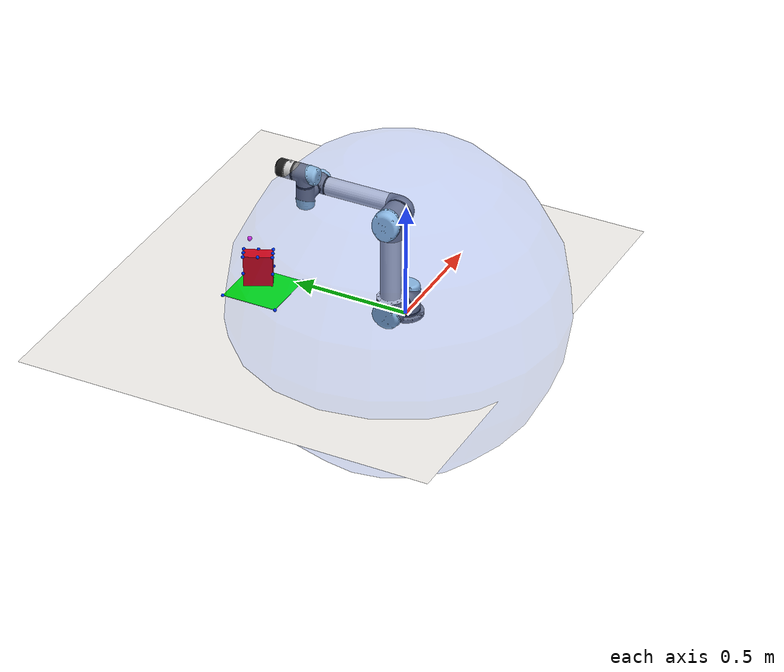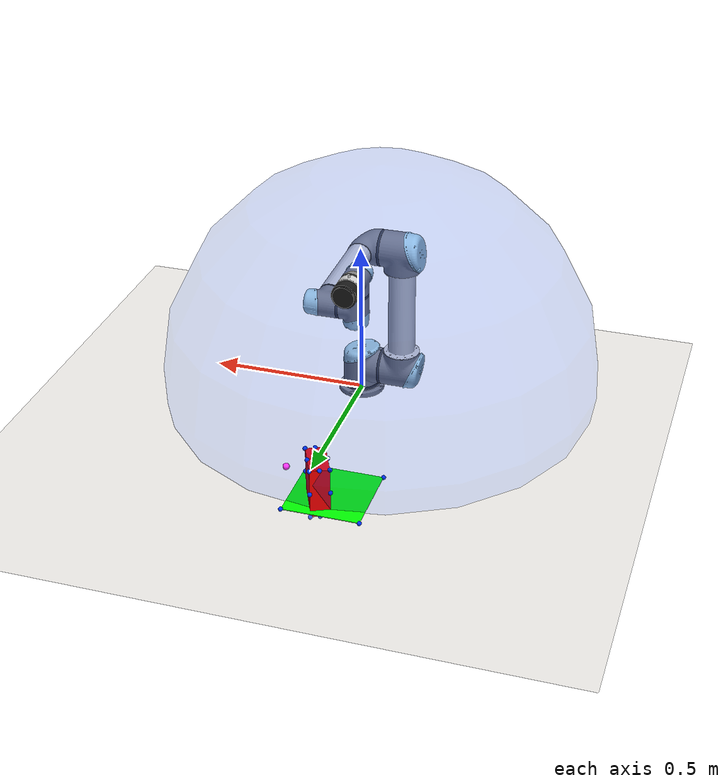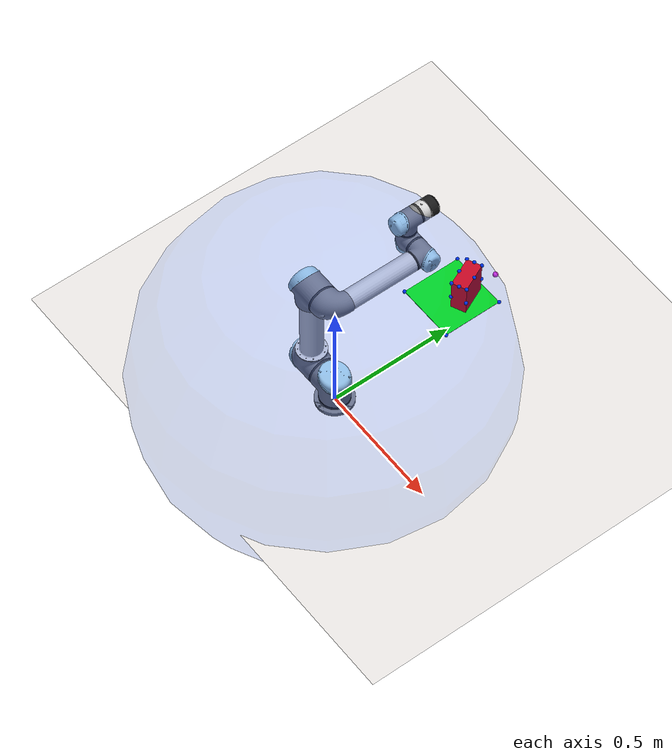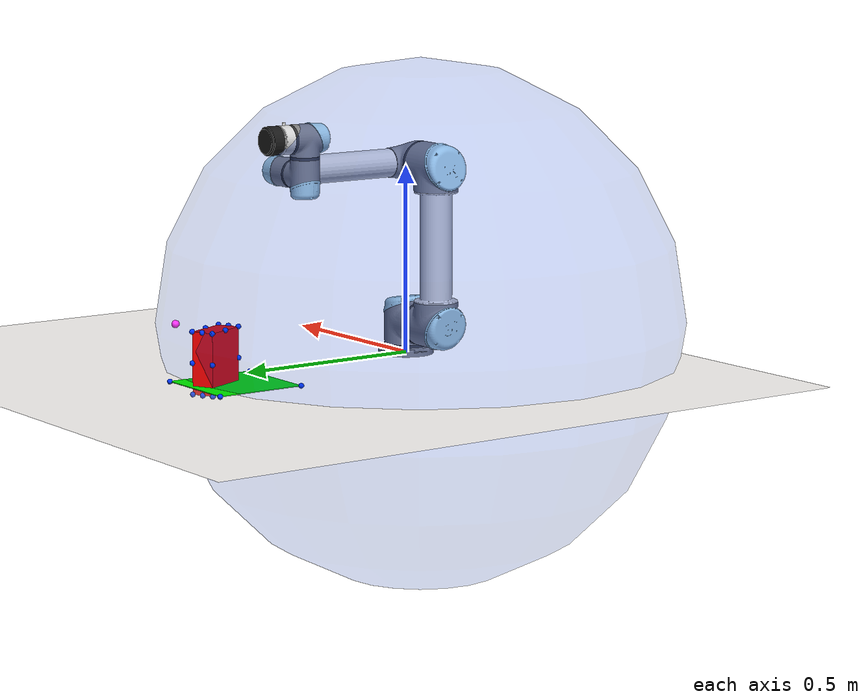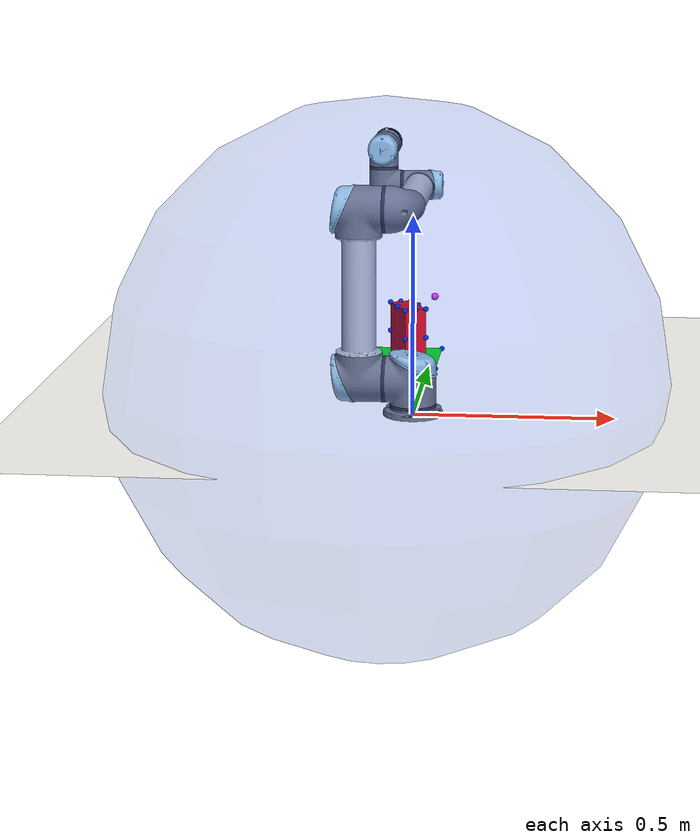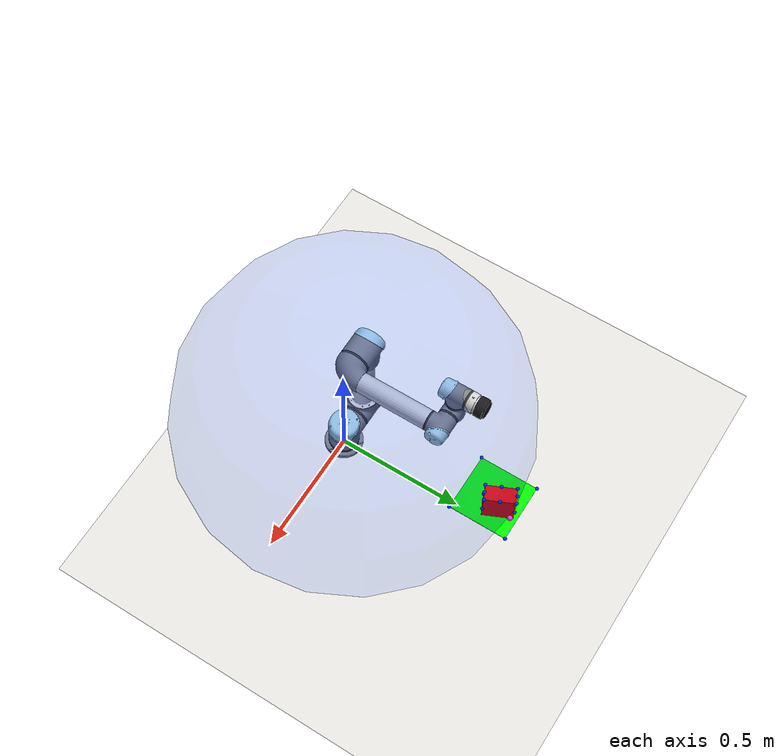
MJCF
<!-- NOTE: the joint limits and references have not been set. If using -->
<!-- this to control a real ur5, make sure they align with the values -->
<!-- used in the real arm firmware -->
<!-- Masses and center-of-masses taken from: www.universal-robots.com/
        how-tos-and-faqs/faq/ur-faq/
        parameters-for-calculations-of-kinematics-and-dynamics-45257/ -->
<!-- Principle moments of inertia not provided, set all to 0.1. -->
<!-- Inertia parameters provided at link below, not sure of accuracy so not used:
        http://hades.mech.northwestern.edu/images/4/49/UR5-URDF.pdf -->
<mujoco model="ur5">
    <compiler angle="radian" meshdir="meshes" balanceinertia="true" eulerseq="xyz"/>

    <default>
        <light castshadow="false" diffuse="1 1 1" />
        <camera fovy="60" />
    </default>

    <custom>
        <numeric name="START_ANGLES" data="0 -.67 -.67 0 0 0"/>
        <numeric name="N_GRIPPER_JOINTS" data="0" />
        <text name="google_id" data="1SjWRUl-D1FZ5fB2cy4jF4X9wTsQ5LWzo"/>
    </custom>

    <asset>
        <!-- arm models -->
        <mesh file="link0.stl"/>
        <mesh file="link1.stl"/>
        <mesh file="link1_cap.stl" />
        <mesh file="link1_connector.stl" />
        <mesh file="link2.stl" />
        <mesh file="link2_tube.stl" />
        <mesh file="link2_cap.stl" />
        <mesh file="link2_connector.stl" />
        <mesh file="link3a.stl" />
        <mesh file="link3a_connector.stl" />
        <mesh file="link3_tube.stl" />
        <mesh file="link3_cap.stl" />
        <mesh file="link3b.stl" />
        <mesh file="link3b_connector.stl" />
        <mesh file="link3b_connector2.stl"/>
        <mesh file="link4.stl" />
        <mesh file="link4_cap.stl" />
        <mesh file="link4_connector.stl" />
        <mesh file="link5.stl" />
        <mesh file="link5_cap.stl" />
        <mesh file="link5_connector.stl" />
        <mesh file="link6.stl" />
        <mesh file="link6_connector.stl" />

        <mesh file="FTS-300-S_support_20210305.stl" />
        <mesh file="robotiq_85_base_link.stl" />
        <mesh file="robotiq_85_finger_link.stl" />
        <mesh file="robotiq_85_finger_tip_link.stl" />
        <mesh file="robotiq_85_inner_knuckle_link.stl" />
        <mesh file="robotiq_85_knuckle_link.stl" />

        <material name="GriMat" specular="0.9" shininess="0.5" reflectance="0" rgba="0.1 0.1 0.1 1" emission="0.1" />

        <texture name="floor_tile" file="meshes/floor_tile.png" width="3000" height="3000" type="2d"/>
        <material name="tile"   texture="floor_tile" specular="0" shininess="0" reflectance="0" emission="1" />

        <material name="silver" specular="1" shininess="0.5" reflectance="1" emission="0.25" rgba="0.82 0.82 0.82 1"/>
        <material name="grey"   specular="1" shininess="0.5" reflectance="1" emission="0.1"  rgba="0.5 0.5 0.5 1"/>
        <material name="blue"   specular="1" shininess="0.5" reflectance="1" emission="0"    rgba="0.678 0.847 0.902 1"/>
        <material name="black"  specular="1" shininess="0.5" reflectance="1" emission="0"    rgba="0.2 0.2 0.2 1"/>
    </asset>

    <worldbody>
        <geom name="floor_grey_tile" pos="0 0.4 -0.001" size="1.0 1.0 0.05" type="plane" solimp="1 1 0 0.5 2" friction="0.1 0.005 0.0001" material="tile"/>

        <!-- light -->
        <light directional="true" pos="-0.5 0.5 3" dir="0 0 -1" />

        <!-- camera -->
        <camera name="camera1" mode= "fixed" euler="0 1.57 1.57" pos="1.0 0.35 0.3"/>
        <camera name="camera2" mode= "fixed" euler="-0.7 0 3.141592653589793" pos="0 1.2 1.2"/>
        <camera name="camera3" mode= "fixed" euler="0 0 3.141592653589793" pos="0 0.4 1.4"/>

        <camera name="obs_camera" mode= "fixed" euler="0 0 3.141592653589793" pos="0 0.4 1.5"/>

        <body name="base_link" pos="0 0 0">
            <geom name="link0" type="mesh" mesh="link0" pos="0 0 0"/>
            <!-- frictionloss="20"  damping="30" limited="true" range accesesable -->
            <body name="link1" pos="0 0 0.0213">
                <joint name="joint0" type="hinge" axis="0 0 1" pos="0 0 0" frictionloss="20"  damping="30" limited="true" range="-0.7853981633974483 0.7853981633974483"/>
                <inertial pos="0 -0.02561 0.00193" mass="3.761" diaginertia="0.1 0.1 0.1"/>
                <geom name="link1_connector"    type="mesh" mesh="link1_connector"  pos="0 0 0"         material="black" conaffinity="32" contype="32"/>
                <geom name="link1"              type="mesh" mesh="link1"            pos="0 0 0.008"     material="grey"/>
                <geom name="link1_cap"          type="mesh" mesh="link1_cap"        pos="0 0 .1025"     material="blue"/>

                <body name="link2" pos="-0.0663 0 0.0679">
                    <joint name="joint1" type="hinge" axis="-1 0 0" pos="0 0 0" frictionloss="20"  damping="30" limited="true" range="-0.7853981633974483 0.7853981633974483"/>
                    <inertial pos="-0.04706 0 0.2125" mass="8.058" diaginertia="0.1 0.1 0.1"/>
                    <geom name="link2_connector" type="mesh" mesh="link2_connector" pos="0 0 0"             material="black" conaffinity="32" contype="32"/>
                    <geom name="link2"           type="mesh" mesh="link2"           pos="-0.008 0 0"        material="grey"/>
                    <geom name="link2_cap"       type="mesh" mesh="link2_cap"       pos="-0.1015 0 -0.0025" material="blue"/>
                    <geom name="link2_tube"      type="mesh" mesh="link2_tube"      pos="-0.0679 0 0.066"   material="silver"/>

                    <body name="link3" pos="-0.008 0 0.425" quat="0.707107 -0.707107 0 0">
                        <joint name="joint2" type="hinge" axis="1 0 0" pos="0 0 0" frictionloss="20"  damping="30" limited="true" range="-0.7853981633974483 0.7853981633974483"/>
                        <inertial pos="0.0478 0 0.15" mass="2.846" diaginertia="0.1 0.1 0.1"/>
                        <geom name="link3a_connector"   type="mesh" mesh="link3a_connector"     pos="0 0 0"             material="black" conaffinity="32" contype="32"/>
                        <geom name="link3a"             type="mesh" mesh="link3a"               pos="0.008 0 0"         material="grey"/>
                        <geom name="link3_tube"         type="mesh" mesh="link3_tube"           pos="0.059 0 0.066"     material="silver"/>
                        <geom name="link3b_connector"   type="mesh" mesh="link3b_connector"     pos="0.059 0 0.3418"    material="black" />
                        <geom name="link3b_connector2"  type="mesh" mesh="link3b_connector2"    pos="0.059 0 0.34"      material="grey" conaffinity="32" contype="32"/>
                        <geom name="link3b"             type="mesh" mesh="link3b"               pos="0.059 0 0.347"     material="grey"/>
                        <geom name="link3_cap"          type="mesh" mesh="link3_cap"            pos="0.0837 0 0.392"    material="blue"/>

                        <body name="link4" pos="0.0173 0 0.3922" quat="0.707107 0.707107 0 0">
                            <joint name="joint3" type="hinge" axis="-1 0 0" pos="0 0 0" frictionloss="20"  damping="30" limited="true" range="0 1.5707963267948966"/>
                            <inertial pos="-0.05796 -0.0018 0" mass="1.37" diaginertia="0.1 0.1 0.1"/>
                            <geom name="link4_connector"    type="mesh" mesh="link4_connector"  pos="0 0 0"                 material="black" conaffinity="32" contype="32"/>
                            <geom name="link4"              type="mesh" mesh="link4"            pos="-0.008 0 0"            material="grey"/>
                            <geom name="link4_cap"          type="mesh" mesh="link4_cap"        pos="-0.05325 0 -0.0247"    material="blue"/>

                            <body name="link5" pos="-0.05325 0 0.04165" quat="0.707107 0 0 -0.707107">
                                <joint name="joint4" type="hinge" axis="0 0 1" pos="0 0 0" frictionloss="20"  damping="30" limited="true" range="-0.7853981633974483 0.7853981633974483"/>
                                <inertial pos="0.0018 0 0.01634" mass="1.3" diaginertia="0.1 0.1 0.1"/>
                                <geom name="link5_connector"    type="mesh" mesh="link5_connector"  pos="0 0 0"         material="black" conaffinity="32" contype="32"/>
                                <geom name="link5"              type="mesh" mesh="link5"            pos="0 0 0.0079"    material="grey"/>
                                <geom name="link5_cap"          type="mesh" mesh="link5_cap"        pos="0.025 0 0.053" material="blue"/>

                                <body name="link6" pos="-0.04165 0 0.05305">
                                    <joint name="joint5" type="hinge" axis="-1 0 0" pos="0 0 0" frictionloss="20"  damping="30" limited="true" range="-0.7853981633974483 0.7853981633974483"/>
                                    <inertial pos="-0.038841 0 0" mass="0.365" diaginertia="0.1 0.1 0.1"/>
                                    <geom name="link6_connector"    type="mesh" mesh="link6_connector"  pos="0 0 0"         material="black" conaffinity="32" contype="32"/>
                                    <geom name="link6"              type="mesh" mesh="link6"            pos="-0.008 0 0"    material="silver"/>
                                    <body name="EE" pos="-0.04 0 0" euler="0 0 0"/>

                                    <body name="gripper" pos="-0.0565 0 0" quat="0.707107 0 -0.707107 0">
                                        <inertial pos="0 0.0823 0" quat="0.707107 -0.707107 0 0" mass="0" diaginertia="0 0 0" />

                                        <body name="robotiq_FT300_force_torque_senser" pos="0 0 0">
                                            <geom name="inner_cylinder"  type="cylinder" pos="0 0 0.00325" size="0.0315 0.01875" material="GriMat"/>
                                            <geom name="outer_cylinder"  type="cylinder" pos="0 0 0"       size="0.0375 0.0155"  material="GriMat" />
                                        </body>

                                    </body>

                                </body>
                            </body>
                        </body>
                    </body>
                </body>
            </body>
        </body>

    <!-- accesable below -->

        <body name="box" pos="-0.06788677 0.6377859 0.05896261" quat="8.42530081e-01  3.50218214e-04  2.16883289e-04 -5.38649136e-01">
            <freejoint/>
            <geom name="box_geom" type="box" size="0.06 0.03 0.08" mass="0.01" solimp="1 1 0 0.5 2" friction="0.3 0.005 0.0001" rgba="1 0 0 1"/>
            <site name="box_center_point" type="sphere" pos="0 0 0" size="0.01" rgba="0 1 1 1"/>

            <site name="box_vertex0" type="sphere" pos="0.06 0.03 0.08" size="0.007" rgba="0 0.2 1 1"/>
            <site name="box_vertex1" type="sphere" pos="0.06 0.03 -0.08" size="0.007" rgba="0 0.2 1 1"/>
            <site name="box_vertex2" type="sphere" pos="0.06 -0.03 0.08" size="0.007" rgba="0 0.2 1 1"/>
            <site name="box_vertex3" type="sphere" pos="0.06 -0.03 -0.08" size="0.007" rgba="0 0.2 1 1"/>
            <site name="box_vertex4" type="sphere" pos="-0.06 0.03 0.08" size="0.007" rgba="0 0.2 1 1"/>
            <site name="box_vertex5" type="sphere" pos="-0.06 0.03 -0.08" size="0.007" rgba="0 0.2 1 1"/>
            <site name="box_vertex6" type="sphere" pos="-0.06 -0.03 0.08" size="0.007" rgba="0 0.2 1 1"/>
            <site name="box_vertex7" type="sphere" pos="-0.06 -0.03 -0.08" size="0.007" rgba="0 0.2 1 1"/>

            <site name="box_probe0" type="sphere" pos="0.06 0.03 0" size="0.007" rgba="0 0.2 1 1"/>
            <site name="box_probe1" type="sphere" pos="0.06 -0.03 0" size="0.007" rgba="0 0.2 1 1"/>
            <site name="box_probe2" type="sphere" pos="-0.06 0.03 0" size="0.007" rgba="0 0.2 1 1"/>
            <site name="box_probe3" type="sphere" pos="-0.06 -0.03 0" size="0.007" rgba="0 0.2 1 1"/>

            <site name="box_probe4" type="sphere" pos="0.06 0 0.08" size="0.007" rgba="0 0.2 1 1"/>
            <site name="box_probe5" type="sphere" pos="0.06 0 -0.08" size="0.007" rgba="0 0.2 1 1"/>
            <site name="box_probe6" type="sphere" pos="-0.06 0 0.08" size="0.007" rgba="0 0.2 1 1"/>
            <site name="box_probe7" type="sphere" pos="-0.06 0 -0.08" size="0.007" rgba="0 0.2 1 1"/>

            <site name="box_probe8" type="sphere" pos="0 0.03 0.08" size="0.007" rgba="0 0.2 1 1"/>
            <site name="box_probe9" type="sphere" pos="0 0.03 -0.08" size="0.007" rgba="0 0.2 1 1"/>
            <site name="box_probe10" type="sphere" pos="0 -0.03 0.08" size="0.007" rgba="0 0.2 1 1"/>
            <site name="box_probe11" type="sphere" pos="0 -0.03 -0.08" size="0.007" rgba="0 0.2 1 1"/>

        </body>

        <site name="target_area_geom" type="box" pos="-0.1 0.6 0.0" size="0.12 0.12 0.001" rgba="0 1 0 1"/>

        <site name="area_vertex0" type="sphere" pos="0.02        0.71999997  0." size="0.007" rgba="0 0.2 1 1"/>
        <site name="area_vertex1" type="sphere" pos="0.02        0.47999999  0." size="0.007" rgba="0 0.2 1 1"/>
        <site name="area_vertex2" type="sphere" pos="-0.22        0.71999997  0." size="0.007" rgba="0 0.2 1 1"/>
        <site name="area_vertex3" type="sphere" pos="-0.22        0.47999999  0." size="0.007" rgba="0 0.2 1 1"/>

        <site name="reference_point" type="sphere" pos="0.   0.71336409 0.15" size="0.01" rgba="1 0.2 1 1"/>
        <site name="workspace" type="sphere" pos="-0.0663 0. 0.0892" size="0.7023272748351097" rgba="0 0.2 0.8 0.05"/>
        <site name="workspace_center" type="sphere" pos="-0.0663 0. 0.0892" size="0.03" rgba="0 0 1 1"/>

    </worldbody>

    <actuator>
        <general name="joint0_actuator"  joint="joint0"        ctrllimited="true" forcelimited="true" ctrlrange="-0.7853981633974483 0.7853981633974483" forcerange="-300 300" biastype="affine" gainprm="300 0 0" biasprm="0 -300 0" />
        <general name="joint1_actuator"  joint="joint1"        ctrllimited="true" forcelimited="true" ctrlrange="-0.7853981633974483 0.7853981633974483" forcerange="-300 300" biastype="affine" gainprm="300 0 0" biasprm="0 -300 0" />
        <general name="joint2_actuator"  joint="joint2"        ctrllimited="true" forcelimited="true" ctrlrange="-0.7853981633974483 0.7853981633974483" forcerange="-300 300" biastype="affine" gainprm="300 0 0" biasprm="0 -300 0" />
        <general name="joint3_actuator"  joint="joint3"        ctrllimited="true" forcelimited="true" ctrlrange=" 0                  1.5707963267948966" forcerange="-300 300" biastype="affine" gainprm="300 0 0" biasprm="0 -300 0" />
        <general name="joint4_actuator"  joint="joint4"        ctrllimited="true" forcelimited="true" ctrlrange="-0.7853981633974483 0.7853981633974483" forcerange="-300 300" biastype="affine" gainprm="300 0 0" biasprm="0 -300 0" />
        <general name="joint5_actuator"  joint="joint5"        ctrllimited="true" forcelimited="true" ctrlrange="-0.7853981633974483 0.7853981633974483" forcerange="-300 300" biastype="affine" gainprm="300 0 0" biasprm="0 -300 0" />

    </actuator>

</mujoco>
